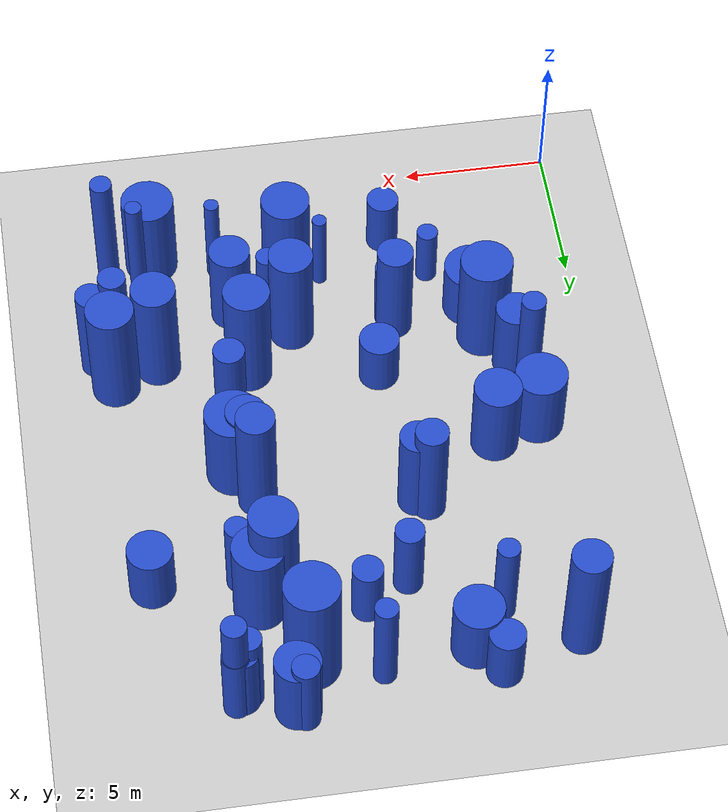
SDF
<sdf version="1.6">
 <world name="default">
  <model name="ground_plane">
   <static>1</static>
   <link name="link">
    <collision name="collision">
     <geometry><plane><normal>0 0 1</normal><size>100 100</size></plane></geometry>
     <surface><friction><ode><mu>100</mu><mu2>50</mu2></ode></friction></surface>
    </collision>
    <visual name="visual">
     <cast_shadows>0</cast_shadows>
     <geometry><plane><normal>0 0 1</normal><size>100 100</size></plane></geometry>
     <material>
      <script><uri>file://media/materials/scripts/gazebo.material</uri><name>Gazebo/Grey</name></script>
     </material>
    </visual>
   </link>
  </model>
  <model name="2">
   <static>0</static>
   <link name="link">
    <inertial>
     <mass>2</mass>
     <inertia><ixx>2.4592</ixx><ixy>0</ixy><ixz>0</ixz><iyy>2.4592</iyy><iyz>0</iyz><izz>0.847323</izz></inertia>
    </inertial>
    <collision name="collision">
     <geometry><cylinder><length>3.49474</length><radius>0.920501</radius></cylinder></geometry>
     <surface><contact><collide_without_contact>1</collide_without_contact></contact></surface>
    </collision>
    <visual name="visual">
     <geometry><cylinder><length>3.49474</length><radius>0.920501</radius></cylinder></geometry>
     <material>
      <script><uri>file://media/materials/scripts/gazebo.material</uri><name>Gazebo/Blue</name></script>
     </material>
    </visual>
    <gravity>0</gravity>
   </link>
   <pose>14.6339 2.72103 1.74737 0 -0 0</pose>
  </model>
  <model name="3">
   <static>0</static>
   <link name="link">
    <inertial>
     <mass>2</mass>
     <inertia><ixx>4.1115</ixx><ixy>0</ixy><ixz>0</ixz><iyy>4.1115</iyy><iyz>0</iyz><izz>0.173022</izz></inertia>
    </inertial>
    <collision name="collision">
     <geometry><cylinder><length>4.91426</length><radius>0.415959</radius></cylinder></geometry>
     <surface><contact><collide_without_contact>1</collide_without_contact></contact></surface>
    </collision>
    <visual name="visual">
     <geometry><cylinder><length>4.91426</length><radius>0.415959</radius></cylinder></geometry>
     <material>
      <script><uri>file://media/materials/scripts/gazebo.material</uri><name>Gazebo/Blue</name></script>
     </material>
    </visual>
    <gravity>0</gravity>
   </link>
   <pose>13.7823 21.1588 2.45713 0 -0 0</pose>
  </model>
  <model name="4">
   <static>0</static>
   <link name="link">
    <inertial>
     <mass>2</mass>
     <inertia><ixx>1.69462</ixx><ixy>0</ixy><ixz>0</ixz><iyy>1.69462</iyy><iyz>0</iyz><izz>0.206012</izz></inertia>
    </inertial>
    <collision name="collision">
     <geometry><cylinder><length>3.09026</length><radius>0.453885</radius></cylinder></geometry>
     <surface><contact><collide_without_contact>1</collide_without_contact></contact></surface>
    </collision>
    <visual name="visual">
     <geometry><cylinder><length>3.09026</length><radius>0.453885</radius></cylinder></geometry>
     <material>
      <script><uri>file://media/materials/scripts/gazebo.material</uri><name>Gazebo/Blue</name></script>
     </material>
    </visual>
    <gravity>0</gravity>
   </link>
   <pose>13.7872 21.1345 1.54513 0 -0 0</pose>
  </model>
  <model name="11">
   <static>0</static>
   <link name="link">
    <inertial>
     <mass>2</mass>
     <inertia><ixx>3.77059</ixx><ixy>0</ixy><ixz>0</ixz><iyy>3.77059</iyy><iyz>0</iyz><izz>0.647013</izz></inertia>
    </inertial>
    <collision name="collision">
     <geometry><cylinder><length>4.5478</length><radius>0.804371</radius></cylinder></geometry>
     <surface><contact><collide_without_contact>1</collide_without_contact></contact></surface>
    </collision>
    <visual name="visual">
     <geometry><cylinder><length>4.5478</length><radius>0.804371</radius></cylinder></geometry>
     <material>
      <script><uri>file://media/materials/scripts/gazebo.material</uri><name>Gazebo/Blue</name></script>
     </material>
    </visual>
    <gravity>0</gravity>
   </link>
   <pose>11.7835 8.00404 2.2739 0 -0 0</pose>
  </model>
  <model name="19">
   <static>0</static>
   <link name="link">
    <inertial>
     <mass>2</mass>
     <inertia>
      <ixx>0.997922</ixx>
      <ixy>0</ixy>
      <ixz>0</ixz>
      <iyy>0.997922</iyy>
      <iyz>0</iyz>
      <izz>0.310025</izz>
     </inertia>
    </inertial>
    <collision name="collision">
     <geometry><cylinder><length>2.24888</length><radius>0.556799</radius></cylinder></geometry>
     <surface><contact><collide_without_contact>1</collide_without_contact></contact></surface>
    </collision>
    <visual name="visual">
     <geometry><cylinder><length>2.24888</length><radius>0.556799</radius></cylinder></geometry>
     <material>
      <script><uri>file://media/materials/scripts/gazebo.material</uri><name>Gazebo/Blue</name></script>
     </material>
    </visual>
    <gravity>0</gravity>
   </link>
   <pose>6.32254 2.75765 1.12444 0 -0 0</pose>
  </model>
  <model name="21">
   <static>0</static>
   <link name="link">
    <inertial>
     <mass>2</mass>
     <inertia>
      <ixx>1.75689</ixx>
      <ixy>0</ixy>
      <ixz>0</ixz>
      <iyy>1.75689</iyy>
      <iyz>0</iyz>
      <izz>0.0651823</izz>
     </inertia>
    </inertial>
    <collision name="collision">
     <geometry><cylinder><length>3.21648</length><radius>0.255308</radius></cylinder></geometry>
     <surface><contact><collide_without_contact>1</collide_without_contact></contact></surface>
    </collision>
    <visual name="visual">
     <geometry><cylinder><length>3.21648</length><radius>0.255308</radius></cylinder></geometry>
     <material>
      <script><uri>file://media/materials/scripts/gazebo.material</uri><name>Gazebo/Blue</name></script>
     </material>
    </visual>
    <gravity>0</gravity>
   </link>
   <pose>8.77724 4.1816 1.60824 0 -0 0</pose>
  </model>
  <model name="22">
   <static>0</static>
   <link name="link">
    <inertial>
     <mass>2</mass>
     <inertia><ixx>2.50621</ixx><ixy>0</ixy><ixz>0</ixz><iyy>2.50621</iyy><iyz>0</iyz><izz>0.412755</izz></inertia>
    </inertial>
    <collision name="collision">
     <geometry><cylinder><length>3.7147</length><radius>0.64246</radius></cylinder></geometry>
     <surface><contact><collide_without_contact>1</collide_without_contact></contact></surface>
    </collision>
    <visual name="visual">
     <geometry><cylinder><length>3.7147</length><radius>0.64246</radius></cylinder></geometry>
     <material>
      <script><uri>file://media/materials/scripts/gazebo.material</uri><name>Gazebo/Blue</name></script>
     </material>
    </visual>
    <gravity>0</gravity>
   </link>
   <pose>6.86482 14.0884 1.85735 0 -0 0</pose>
  </model>
  <model name="27">
   <static>0</static>
   <link name="link">
    <inertial>
     <mass>2</mass>
     <inertia><ixx>1.09126</ixx><ixy>0</ixy><ixz>0</ixz><iyy>1.09126</iyy><iyz>0</iyz><izz>0.36449</izz></inertia>
    </inertial>
    <collision name="collision">
     <geometry><cylinder><length>2.3354</length><radius>0.60373</radius></cylinder></geometry>
     <surface><contact><collide_without_contact>1</collide_without_contact></contact></surface>
    </collision>
    <visual name="visual">
     <geometry><cylinder><length>2.3354</length><radius>0.60373</radius></cylinder></geometry>
     <material>
      <script><uri>file://media/materials/scripts/gazebo.material</uri><name>Gazebo/Blue</name></script>
     </material>
    </visual>
    <gravity>0</gravity>
   </link>
   <pose>5.09837 21.0818 1.1677 0 -0 0</pose>
  </model>
  <model name="32">
   <static>0</static>
   <link name="link">
    <inertial>
     <mass>2</mass>
     <inertia><ixx>2.55489</ixx><ixy>0</ixy><ixz>0</ixz><iyy>2.55489</iyy><iyz>0</iyz><izz>0.788576</izz></inertia>
    </inertial>
    <collision name="collision">
     <geometry><cylinder><length>3.6005</length><radius>0.888018</radius></cylinder></geometry>
     <surface><contact><collide_without_contact>1</collide_without_contact></contact></surface>
    </collision>
    <visual name="visual">
     <geometry><cylinder><length>3.6005</length><radius>0.888018</radius></cylinder></geometry>
     <material>
      <script><uri>file://media/materials/scripts/gazebo.material</uri><name>Gazebo/Blue</name></script>
     </material>
    </visual>
    <gravity>0</gravity>
   </link>
   <pose>12.5968 17.555 1.80025 0 -0 0</pose>
  </model>
  <model name="38">
   <static>0</static>
   <link name="link">
    <inertial>
     <mass>2</mass>
     <inertia><ixx>1.8464</ixx><ixy>0</ixy><ixz>0</ixz><iyy>1.8464</iyy><iyz>0</iyz><izz>0.210959</izz></inertia>
    </inertial>
    <collision name="collision">
     <geometry><cylinder><length>3.23195</length><radius>0.459303</radius></cylinder></geometry>
     <surface><contact><collide_without_contact>1</collide_without_contact></contact></surface>
    </collision>
    <visual name="visual">
     <geometry><cylinder><length>3.23195</length><radius>0.459303</radius></cylinder></geometry>
     <material>
      <script><uri>file://media/materials/scripts/gazebo.material</uri><name>Gazebo/Blue</name></script>
     </material>
    </visual>
    <gravity>0</gravity>
   </link>
   <pose>11.6565 21.8837 1.61598 0 -0 0</pose>
  </model>
  <model name="40">
   <static>0</static>
   <link name="link">
    <inertial>
     <mass>2</mass>
     <inertia><ixx>1.69462</ixx><ixy>0</ixy><ixz>0</ixz><iyy>1.69462</iyy><iyz>0</iyz><izz>0.809361</izz></inertia>
    </inertial>
    <collision name="collision">
     <geometry><cylinder><length>2.78202</length><radius>0.899645</radius></cylinder></geometry>
     <surface><contact><collide_without_contact>1</collide_without_contact></contact></surface>
    </collision>
    <visual name="visual">
     <geometry><cylinder><length>2.78202</length><radius>0.899645</radius></cylinder></geometry>
     <material>
      <script><uri>file://media/materials/scripts/gazebo.material</uri><name>Gazebo/Blue</name></script>
     </material>
    </visual>
    <gravity>0</gravity>
   </link>
   <pose>2.25113 11.4808 1.39101 0 -0 0</pose>
  </model>
  <model name="45">
   <static>0</static>
   <link name="link">
    <inertial>
     <mass>2</mass>
     <inertia><ixx>3.37145</ixx><ixy>0</ixy><ixz>0</ixz><iyy>3.37145</iyy><iyz>0</iyz><izz>0.593405</izz></inertia>
    </inertial>
    <collision name="collision">
     <geometry><cylinder><length>4.29517</length><radius>0.770328</radius></cylinder></geometry>
     <surface><contact><collide_without_contact>1</collide_without_contact></contact></surface>
    </collision>
    <visual name="visual">
     <geometry><cylinder><length>4.29517</length><radius>0.770328</radius></cylinder></geometry>
     <material>
      <script><uri>file://media/materials/scripts/gazebo.material</uri><name>Gazebo/Blue</name></script>
     </material>
    </visual>
    <gravity>0</gravity>
   </link>
   <pose>10.0825 6.46261 2.14758 0 -0 0</pose>
  </model>
  <model name="47">
   <static>0</static>
   <link name="link">
    <inertial>
     <mass>2</mass>
     <inertia><ixx>4.30581</ixx><ixy>0</ixy><ixz>0</ixz><iyy>4.30581</iyy><iyz>0</iyz><izz>0.874701</izz></inertia>
    </inertial>
    <collision name="collision">
     <geometry><cylinder><length>4.81775</length><radius>0.935255</radius></cylinder></geometry>
     <surface><contact><collide_without_contact>1</collide_without_contact></contact></surface>
    </collision>
    <visual name="visual">
     <geometry><cylinder><length>4.81775</length><radius>0.935255</radius></cylinder></geometry>
     <material>
      <script><uri>file://media/materials/scripts/gazebo.material</uri><name>Gazebo/Blue</name></script>
     </material>
    </visual>
    <gravity>0</gravity>
   </link>
   <pose>11.1965 19.9775 2.40888 0 -0 0</pose>
  </model>
  <model name="52">
   <static>0</static>
   <link name="link">
    <inertial>
     <mass>2</mass>
     <inertia><ixx>2.41043</ixx><ixy>0</ixy><ixz>0</ixz><iyy>2.41043</iyy><iyz>0</iyz><izz>0.952559</izz></inertia>
    </inertial>
    <collision name="collision">
     <geometry><cylinder><length>3.40659</length><radius>0.975991</radius></cylinder></geometry>
     <surface><contact><collide_without_contact>1</collide_without_contact></contact></surface>
    </collision>
    <visual name="visual">
     <geometry><cylinder><length>3.40659</length><radius>0.975991</radius></cylinder></geometry>
     <material>
      <script><uri>file://media/materials/scripts/gazebo.material</uri><name>Gazebo/Blue</name></script>
     </material>
    </visual>
    <gravity>0</gravity>
   </link>
   <pose>12.7603 12.0977 1.7033 0 -0 0</pose>
  </model>
  <model name="58">
   <static>0</static>
   <link name="link">
    <inertial>
     <mass>2</mass>
     <inertia><ixx>2.373</ixx><ixy>0</ixy><ixz>0</ixz><iyy>2.373</iyy><iyz>0</iyz><izz>0.145123</izz></inertia>
    </inertial>
    <collision name="collision">
     <geometry><cylinder><length>3.71519</length><radius>0.38095</radius></cylinder></geometry>
     <surface><contact><collide_without_contact>1</collide_without_contact></contact></surface>
    </collision>
    <visual name="visual">
     <geometry><cylinder><length>3.71519</length><radius>0.38095</radius></cylinder></geometry>
     <material>
      <script><uri>file://media/materials/scripts/gazebo.material</uri><name>Gazebo/Blue</name></script>
     </material>
    </visual>
    <gravity>0</gravity>
   </link>
   <pose>4.71278 18.757 1.8576 0 -0 0</pose>
  </model>
  <model name="60">
   <static>0</static>
   <link name="link">
    <inertial>
     <mass>2</mass>
     <inertia><ixx>1.97195</ixx><ixy>0</ixy><ixz>0</ixz><iyy>1.97195</iyy><iyz>0</iyz><izz>0.666713</izz></inertia>
    </inertial>
    <collision name="collision">
     <geometry><cylinder><length>3.13553</length><radius>0.816525</radius></cylinder></geometry>
     <surface><contact><collide_without_contact>1</collide_without_contact></contact></surface>
    </collision>
    <visual name="visual">
     <geometry><cylinder><length>3.13553</length><radius>0.816525</radius></cylinder></geometry>
     <material>
      <script><uri>file://media/materials/scripts/gazebo.material</uri><name>Gazebo/Blue</name></script>
     </material>
    </visual>
    <gravity>0</gravity>
   </link>
   <pose>3.85237 12.0827 1.56776 0 -0 0</pose>
  </model>
  <model name="71">
   <static>0</static>
   <link name="link">
    <inertial>
     <mass>2</mass>
     <inertia><ixx>1.35655</ixx><ixy>0</ixy><ixz>0</ixz><iyy>1.35655</iyy><iyz>0</iyz><izz>0.3536</izz></inertia>
    </inertial>
    <collision name="collision">
     <geometry><cylinder><length>2.66054</length><radius>0.594643</radius></cylinder></geometry>
     <surface><contact><collide_without_contact>1</collide_without_contact></contact></surface>
    </collision>
    <visual name="visual">
     <geometry><cylinder><length>2.66054</length><radius>0.594643</radius></cylinder></geometry>
     <material>
      <script><uri>file://media/materials/scripts/gazebo.material</uri><name>Gazebo/Blue</name></script>
     </material>
    </visual>
    <gravity>0</gravity>
   </link>
   <pose>6.51923 6.20878 1.33027 0 -0 0</pose>
  </model>
  <model name="77">
   <static>0</static>
   <link name="link">
    <inertial>
     <mass>2</mass>
     <inertia><ixx>2.29026</ixx><ixy>0</ixy><ixz>0</ixz><iyy>2.29026</iyy><iyz>0</iyz><izz>0.492455</izz></inertia>
    </inertial>
    <collision name="collision">
     <geometry><cylinder><length>3.50202</length><radius>0.701751</radius></cylinder></geometry>
     <surface><contact><collide_without_contact>1</collide_without_contact></contact></surface>
    </collision>
    <visual name="visual">
     <geometry><cylinder><length>3.50202</length><radius>0.701751</radius></cylinder></geometry>
     <material>
      <script><uri>file://media/materials/scripts/gazebo.material</uri><name>Gazebo/Blue</name></script>
     </material>
    </visual>
    <gravity>0</gravity>
   </link>
   <pose>12.3354 12.1472 1.75101 0 -0 0</pose>
  </model>
  <model name="88">
   <static>0</static>
   <link name="link">
    <inertial>
     <mass>2</mass>
     <inertia><ixx>3.32332</ixx><ixy>0</ixy><ixz>0</ixz><iyy>3.32332</iyy><iyz>0</iyz><izz>0.81294</izz></inertia>
    </inertial>
    <collision name="collision">
     <geometry><cylinder><length>4.18343</length><radius>0.901632</radius></cylinder></geometry>
     <surface><contact><collide_without_contact>1</collide_without_contact></contact></surface>
    </collision>
    <visual name="visual">
     <geometry><cylinder><length>4.18343</length><radius>0.901632</radius></cylinder></geometry>
     <material>
      <script><uri>file://media/materials/scripts/gazebo.material</uri><name>Gazebo/Blue</name></script>
     </material>
    </visual>
    <gravity>0</gravity>
   </link>
   <pose>3.4913 7.55284 2.09172 0 -0 0</pose>
  </model>
  <model name="90">
   <static>0</static>
   <link name="link">
    <inertial>
     <mass>2</mass>
     <inertia><ixx>2.86278</ixx><ixy>0</ixy><ixz>0</ixz><iyy>2.86278</iyy><iyz>0</iyz><izz>0.397125</izz></inertia>
    </inertial>
    <collision name="collision">
     <geometry><cylinder><length>3.99816</length><radius>0.630179</radius></cylinder></geometry>
     <surface><contact><collide_without_contact>1</collide_without_contact></contact></surface>
    </collision>
    <visual name="visual">
     <geometry><cylinder><length>3.99816</length><radius>0.630179</radius></cylinder></geometry>
     <material>
      <script><uri>file://media/materials/scripts/gazebo.material</uri><name>Gazebo/Blue</name></script>
     </material>
    </visual>
    <gravity>0</gravity>
   </link>
   <pose>6.48747 6.60006 1.99908 0 -0 0</pose>
  </model>
  <model name="92">
   <static>0</static>
   <link name="link">
    <inertial>
     <mass>2</mass>
     <inertia><ixx>1.26504</ixx><ixy>0</ixy><ixz>0</ixz><iyy>1.26504</iyy><iyz>0</iyz><izz>0.921977</izz></inertia>
    </inertial>
    <collision name="collision">
     <geometry><cylinder><length>2.19643</length><radius>0.960197</radius></cylinder></geometry>
     <surface><contact><collide_without_contact>1</collide_without_contact></contact></surface>
    </collision>
    <visual name="visual">
     <geometry><cylinder><length>2.19643</length><radius>0.960197</radius></cylinder></geometry>
     <material>
      <script><uri>file://media/materials/scripts/gazebo.material</uri><name>Gazebo/Blue</name></script>
     </material>
    </visual>
    <gravity>0</gravity>
   </link>
   <pose>3.6952 6.14217 1.09822 0 -0 0</pose>
  </model>
  <model name="95">
   <static>0</static>
   <link name="link">
    <inertial>
     <mass>2</mass>
     <inertia><ixx>2.20856</ixx><ixy>0</ixy><ixz>0</ixz><iyy>2.20856</iyy><iyz>0</iyz><izz>0.202569</izz></inertia>
    </inertial>
    <collision name="collision">
     <geometry><cylinder><length>3.55579</length><radius>0.450077</radius></cylinder></geometry>
     <surface><contact><collide_without_contact>1</collide_without_contact></contact></surface>
    </collision>
    <visual name="visual">
     <geometry><cylinder><length>3.55579</length><radius>0.450077</radius></cylinder></geometry>
     <material>
      <script><uri>file://media/materials/scripts/gazebo.material</uri><name>Gazebo/Blue</name></script>
     </material>
    </visual>
    <gravity>0</gravity>
   </link>
   <pose>13.3348 20.8304 1.77789 0 -0 0</pose>
  </model>
  <model name="97">
   <static>0</static>
   <link name="link">
    <inertial>
     <mass>2</mass>
     <inertia><ixx>1.79072</ixx><ixy>0</ixy><ixz>0</ixz><iyy>1.79072</iyy><iyz>0</iyz><izz>0.492461</izz></inertia>
    </inertial>
    <collision name="collision">
     <geometry><cylinder><length>3.04417</length><radius>0.701755</radius></cylinder></geometry>
     <surface><contact><collide_without_contact>1</collide_without_contact></contact></surface>
    </collision>
    <visual name="visual">
     <geometry><cylinder><length>3.04417</length><radius>0.701755</radius></cylinder></geometry>
     <material>
      <script><uri>file://media/materials/scripts/gazebo.material</uri><name>Gazebo/Blue</name></script>
     </material>
    </visual>
    <gravity>0</gravity>
   </link>
   <pose>2.64905 8.82661 1.52208 0 -0 0</pose>
  </model>
  <model name="100">
   <static>0</static>
   <link name="link">
    <inertial>
     <mass>2</mass>
     <inertia><ixx>3.68584</ixx><ixy>0</ixy><ixz>0</ixz><iyy>3.68584</iyy><iyz>0</iyz><izz>0.715323</izz></inertia>
    </inertial>
    <collision name="collision">
     <geometry><cylinder><length>4.46868</length><radius>0.845768</radius></cylinder></geometry>
     <surface><contact><collide_without_contact>1</collide_without_contact></contact></surface>
    </collision>
    <visual name="visual">
     <geometry><cylinder><length>4.46868</length><radius>0.845768</radius></cylinder></geometry>
     <material>
      <script><uri>file://media/materials/scripts/gazebo.material</uri><name>Gazebo/Blue</name></script>
     </material>
    </visual>
    <gravity>0</gravity>
   </link>
   <pose>9.95991 4.16997 2.23434 0 -0 0</pose>
  </model>
  <model name="102">
   <static>0</static>
   <link name="link">
    <inertial>
     <mass>2</mass>
     <inertia><ixx>3.54806</ixx><ixy>0</ixy><ixz>0</ixz><iyy>3.54806</iyy><iyz>0</iyz><izz>0.691929</izz></inertia>
    </inertial>
    <collision name="collision">
     <geometry><cylinder><length>4.38322</length><radius>0.831823</radius></cylinder></geometry>
     <surface><contact><collide_without_contact>1</collide_without_contact></contact></surface>
    </collision>
    <visual name="visual">
     <geometry><cylinder><length>4.38322</length><radius>0.831823</radius></cylinder></geometry>
     <material>
      <script><uri>file://media/materials/scripts/gazebo.material</uri><name>Gazebo/Blue</name></script>
     </material>
    </visual>
    <gravity>0</gravity>
   </link>
   <pose>16.3981 7.99857 2.19161 0 -0 0</pose>
  </model>
  <model name="107">
   <static>0</static>
   <link name="link">
    <inertial>
     <mass>2</mass>
     <inertia><ixx>1.85939</ixx><ixy>0</ixy><ixz>0</ixz><iyy>1.85939</iyy><iyz>0</iyz><izz>0.178695</izz></inertia>
    </inertial>
    <collision name="collision">
     <geometry><cylinder><length>3.25887</length><radius>0.422723</radius></cylinder></geometry>
     <surface><contact><collide_without_contact>1</collide_without_contact></contact></surface>
    </collision>
    <visual name="visual">
     <geometry><cylinder><length>3.25887</length><radius>0.422723</radius></cylinder></geometry>
     <material>
      <script><uri>file://media/materials/scripts/gazebo.material</uri><name>Gazebo/Blue</name></script>
     </material>
    </visual>
    <gravity>0</gravity>
   </link>
   <pose>13.1558 16.4623 1.62944 0 -0 0</pose>
  </model>
  <model name="111">
   <static>0</static>
   <link name="link">
    <inertial>
     <mass>2</mass>
     <inertia>
      <ixx>0.780098</ixx>
      <ixy>0</ixy>
      <ixz>0</ixz>
      <iyy>0.780098</iyy>
      <iyz>0</iyz>
      <izz>0.171352</izz>
     </inertia>
    </inertial>
    <collision name="collision">
     <geometry><cylinder><length>2.04121</length><radius>0.413947</radius></cylinder></geometry>
     <surface><contact><collide_without_contact>1</collide_without_contact></contact></surface>
    </collision>
    <visual name="visual">
     <geometry><cylinder><length>2.04121</length><radius>0.413947</radius></cylinder></geometry>
     <material>
      <script><uri>file://media/materials/scripts/gazebo.material</uri><name>Gazebo/Blue</name></script>
     </material>
    </visual>
    <gravity>0</gravity>
   </link>
   <pose>5.84415 20.2492 1.0206 0 -0 0</pose>
  </model>
  <model name="118">
   <static>0</static>
   <link name="link">
    <inertial>
     <mass>2</mass>
     <inertia><ixx>1.11708</ixx><ixy>0</ixy><ixz>0</ixz><iyy>1.11708</iyy><iyz>0</iyz><izz>0.275413</izz></inertia>
    </inertial>
    <collision name="collision">
     <geometry><cylinder><length>2.42409</length><radius>0.524798</radius></cylinder></geometry>
     <surface><contact><collide_without_contact>1</collide_without_contact></contact></surface>
    </collision>
    <visual name="visual">
     <geometry><cylinder><length>2.42409</length><radius>0.524798</radius></cylinder></geometry>
     <material>
      <script><uri>file://media/materials/scripts/gazebo.material</uri><name>Gazebo/Blue</name></script>
     </material>
    </visual>
    <gravity>0</gravity>
   </link>
   <pose>9.1346 18.0868 1.21205 0 -0 0</pose>
  </model>
  <model name="121">
   <static>0</static>
   <link name="link">
    <inertial>
     <mass>2</mass>
     <inertia><ixx>2.77038</ixx><ixy>0</ixy><ixz>0</ixz><iyy>2.77038</iyy><iyz>0</iyz><izz>0.151986</izz></inertia>
    </inertial>
    <collision name="collision">
     <geometry><cylinder><length>4.02074</length><radius>0.389854</radius></cylinder></geometry>
     <surface><contact><collide_without_contact>1</collide_without_contact></contact></surface>
    </collision>
    <visual name="visual">
     <geometry><cylinder><length>4.02074</length><radius>0.389854</radius></cylinder></geometry>
     <material>
      <script><uri>file://media/materials/scripts/gazebo.material</uri><name>Gazebo/Blue</name></script>
     </material>
    </visual>
    <gravity>0</gravity>
   </link>
   <pose>8.93188 20.6188 2.01037 0 -0 0</pose>
  </model>
  <model name="134">
   <static>0</static>
   <link name="link">
    <inertial>
     <mass>2</mass>
     <inertia><ixx>1.3834</ixx><ixy>0</ixy><ixz>0</ixz><iyy>1.3834</iyy><iyz>0</iyz><izz>0.719026</izz></inertia>
    </inertial>
    <collision name="collision">
     <geometry><cylinder><length>2.47858</length><radius>0.847954</radius></cylinder></geometry>
     <surface><contact><collide_without_contact>1</collide_without_contact></contact></surface>
    </collision>
    <visual name="visual">
     <geometry><cylinder><length>2.47858</length><radius>0.847954</radius></cylinder></geometry>
     <material>
      <script><uri>file://media/materials/scripts/gazebo.material</uri><name>Gazebo/Blue</name></script>
     </material>
    </visual>
    <gravity>0</gravity>
   </link>
   <pose>5.83667 20.0283 1.23929 0 -0 0</pose>
  </model>
  <model name="143">
   <static>0</static>
   <link name="link">
    <inertial>
     <mass>2</mass>
     <inertia><ixx>3.31479</ixx><ixy>0</ixy><ixz>0</ixz><iyy>3.31479</iyy><iyz>0</iyz><izz>0.28799</izz></inertia>
    </inertial>
    <collision name="collision">
     <geometry><cylinder><length>4.36174</length><radius>0.536647</radius></cylinder></geometry>
     <surface><contact><collide_without_contact>1</collide_without_contact></contact></surface>
    </collision>
    <visual name="visual">
     <geometry><cylinder><length>4.36174</length><radius>0.536647</radius></cylinder></geometry>
     <material>
      <script><uri>file://media/materials/scripts/gazebo.material</uri><name>Gazebo/Blue</name></script>
     </material>
    </visual>
    <gravity>0</gravity>
   </link>
   <pose>12.638 10.2211 2.18087 0 -0 0</pose>
  </model>
  <model name="151">
   <static>0</static>
   <link name="link">
    <inertial>
     <mass>2</mass>
     <inertia>
      <ixx>0.940168</ixx>
      <ixy>0</ixy>
      <ixz>0</ixz>
      <iyy>0.940168</iyy>
      <iyz>0</iyz>
      <izz>0.483154</izz>
     </inertia>
    </inertial>
    <collision name="collision">
     <geometry><cylinder><length>2.04733</length><radius>0.695093</radius></cylinder></geometry>
     <surface><contact><collide_without_contact>1</collide_without_contact></contact></surface>
    </collision>
    <visual name="visual">
     <geometry><cylinder><length>2.04733</length><radius>0.695093</radius></cylinder></geometry>
     <material>
      <script><uri>file://media/materials/scripts/gazebo.material</uri><name>Gazebo/Blue</name></script>
     </material>
    </visual>
    <gravity>0</gravity>
   </link>
   <pose>7.32886 8.69612 1.02366 0 -0 0</pose>
  </model>
  <model name="154">
   <static>0</static>
   <link name="link">
    <inertial>
     <mass>2</mass>
     <inertia><ixx>4.18222</ixx><ixy>0</ixy><ixz>0</ixz><iyy>4.18222</iyy><iyz>0</iyz><izz>0.43784</izz></inertia>
    </inertial>
    <collision name="collision">
     <geometry><cylinder><length>4.87646</length><radius>0.661695</radius></cylinder></geometry>
     <surface><contact><collide_without_contact>1</collide_without_contact></contact></surface>
    </collision>
    <visual name="visual">
     <geometry><cylinder><length>4.87646</length><radius>0.661695</radius></cylinder></geometry>
     <material>
      <script><uri>file://media/materials/scripts/gazebo.material</uri><name>Gazebo/Blue</name></script>
     </material>
    </visual>
    <gravity>0</gravity>
   </link>
   <pose>2.38609 20.1587 2.43823 0 -0 0</pose>
  </model>
  <model name="159">
   <static>0</static>
   <link name="link">
    <inertial>
     <mass>2</mass>
     <inertia><ixx>3.53942</ixx><ixy>0</ixy><ixz>0</ixz><iyy>3.53942</iyy><iyz>0</iyz><izz>0.596226</izz></inertia>
    </inertial>
    <collision name="collision">
     <geometry><cylinder><length>4.40997</length><radius>0.772157</radius></cylinder></geometry>
     <surface><contact><collide_without_contact>1</collide_without_contact></contact></surface>
    </collision>
    <visual name="visual">
     <geometry><cylinder><length>4.40997</length><radius>0.772157</radius></cylinder></geometry>
     <material>
      <script><uri>file://media/materials/scripts/gazebo.material</uri><name>Gazebo/Blue</name></script>
     </material>
    </visual>
    <gravity>0</gravity>
   </link>
   <pose>14.8704 7.34621 2.20499 0 -0 0</pose>
  </model>
  <model name="161">
   <static>0</static>
   <link name="link">
    <inertial>
     <mass>2</mass>
     <inertia>
      <ixx>0.964244</ixx>
      <ixy>0</ixy>
      <ixz>0</ixz>
      <iyy>0.964244</iyy>
      <iyz>0</iyz>
      <izz>0.135231</izz>
     </inertia>
    </inertial>
    <collision name="collision">
     <geometry><cylinder><length>2.31943</length><radius>0.367737</radius></cylinder></geometry>
     <surface><contact><collide_without_contact>1</collide_without_contact></contact></surface>
    </collision>
    <visual name="visual">
     <geometry><cylinder><length>2.31943</length><radius>0.367737</radius></cylinder></geometry>
     <material>
      <script><uri>file://media/materials/scripts/gazebo.material</uri><name>Gazebo/Blue</name></script>
     </material>
    </visual>
    <gravity>0</gravity>
   </link>
   <pose>5.00364 4.50297 1.15972 0 -0 0</pose>
  </model>
  <model name="178">
   <static>0</static>
   <link name="link">
    <inertial>
     <mass>2</mass>
     <inertia><ixx>2.19598</ixx><ixy>0</ixy><ixz>0</ixz><iyy>2.19598</iyy><iyz>0</iyz><izz>0.145822</izz></inertia>
    </inertial>
    <collision name="collision">
     <geometry><cylinder><length>3.56909</length><radius>0.381867</radius></cylinder></geometry>
     <surface><contact><collide_without_contact>1</collide_without_contact></contact></surface>
    </collision>
    <visual name="visual">
     <geometry><cylinder><length>3.56909</length><radius>0.381867</radius></cylinder></geometry>
     <material>
      <script><uri>file://media/materials/scripts/gazebo.material</uri><name>Gazebo/Blue</name></script>
     </material>
    </visual>
    <gravity>0</gravity>
   </link>
   <pose>10.8212 5.80215 1.78454 0 -0 0</pose>
  </model>
  <model name="183">
   <static>0</static>
   <link name="link">
    <inertial>
     <mass>2</mass>
     <inertia><ixx>1.59692</ixx><ixy>0</ixy><ixz>0</ixz><iyy>1.59692</iyy><iyz>0</iyz><izz>0.360686</izz></inertia>
    </inertial>
    <collision name="collision">
     <geometry><cylinder><length>2.91538</length><radius>0.600571</radius></cylinder></geometry>
     <surface><contact><collide_without_contact>1</collide_without_contact></contact></surface>
    </collision>
    <visual name="visual">
     <geometry><cylinder><length>2.91538</length><radius>0.600571</radius></cylinder></geometry>
     <material>
      <script><uri>file://media/materials/scripts/gazebo.material</uri><name>Gazebo/Blue</name></script>
     </material>
    </visual>
    <gravity>0</gravity>
   </link>
   <pose>13.5905 20.9137 1.45769 0 -0 0</pose>
  </model>
  <model name="184">
   <static>0</static>
   <link name="link">
    <inertial>
     <mass>2</mass>
     <inertia><ixx>3.81968</ixx><ixy>0</ixy><ixz>0</ixz><iyy>3.81968</iyy><iyz>0</iyz><izz>0.146862</izz></inertia>
    </inertial>
    <collision name="collision">
     <geometry><cylinder><length>4.74104</length><radius>0.383226</radius></cylinder></geometry>
     <surface><contact><collide_without_contact>1</collide_without_contact></contact></surface>
    </collision>
    <visual name="visual">
     <geometry><cylinder><length>4.74104</length><radius>0.383226</radius></cylinder></geometry>
     <material>
      <script><uri>file://media/materials/scripts/gazebo.material</uri><name>Gazebo/Blue</name></script>
     </material>
    </visual>
    <gravity>0</gravity>
   </link>
   <pose>16.1818 2.78422 2.37052 0 -0 0</pose>
  </model>
  <model name="185">
   <static>0</static>
   <link name="link">
    <inertial>
     <mass>2</mass>
     <inertia><ixx>3.27841</ixx><ixy>0</ixy><ixz>0</ixz><iyy>3.27841</iyy><iyz>0</iyz><izz>0.230123</izz></inertia>
    </inertial>
    <collision name="collision">
     <geometry><cylinder><length>4.35662</length><radius>0.479711</radius></cylinder></geometry>
     <surface><contact><collide_without_contact>1</collide_without_contact></contact></surface>
    </collision>
    <visual name="visual">
     <geometry><cylinder><length>4.35662</length><radius>0.479711</radius></cylinder></geometry>
     <material>
      <script><uri>file://media/materials/scripts/gazebo.material</uri><name>Gazebo/Blue</name></script>
     </material>
    </visual>
    <gravity>0</gravity>
   </link>
   <pose>16.1941 6.6207 2.17831 0 -0 0</pose>
  </model>
  <model name="190">
   <static>0</static>
   <link name="link">
    <inertial>
     <mass>2</mass>
     <inertia><ixx>3.97541</ixx><ixy>0</ixy><ixz>0</ixz><iyy>3.97541</iyy><iyz>0</iyz><izz>0.441903</izz></inertia>
    </inertial>
    <collision name="collision">
     <geometry><cylinder><length>4.74624</length><radius>0.664758</radius></cylinder></geometry>
     <surface><contact><collide_without_contact>1</collide_without_contact></contact></surface>
    </collision>
    <visual name="visual">
     <geometry><cylinder><length>4.74624</length><radius>0.664758</radius></cylinder></geometry>
     <material>
      <script><uri>file://media/materials/scripts/gazebo.material</uri><name>Gazebo/Blue</name></script>
     </material>
    </visual>
    <gravity>0</gravity>
   </link>
   <pose>12.1448 13.34 2.37312 0 -0 0</pose>
  </model>
  <model name="196">
   <static>0</static>
   <link name="link">
    <inertial>
     <mass>2</mass>
     <inertia><ixx>2.2744</ixx><ixy>0</ixy><ixz>0</ixz><iyy>2.2744</iyy><iyz>0</iyz><izz>0.512084</izz></inertia>
    </inertial>
    <collision name="collision">
     <geometry><cylinder><length>3.47996</length><radius>0.7156</radius></cylinder></geometry>
     <surface><contact><collide_without_contact>1</collide_without_contact></contact></surface>
    </collision>
    <visual name="visual">
     <geometry><cylinder><length>3.47996</length><radius>0.7156</radius></cylinder></geometry>
     <material>
      <script><uri>file://media/materials/scripts/gazebo.material</uri><name>Gazebo/Blue</name></script>
     </material>
    </visual>
    <gravity>0</gravity>
   </link>
   <pose>12.0664 5.3226 1.73998 0 -0 0</pose>
  </model>
  <model name="209">
   <static>0</static>
   <link name="link">
    <inertial>
     <mass>2</mass>
     <inertia><ixx>1.70016</ixx><ixy>0</ixy><ixz>0</ixz><iyy>1.70016</iyy><iyz>0</iyz><izz>0.245876</izz></inertia>
    </inertial>
    <collision name="collision">
     <geometry><cylinder><length>3.07625</length><radius>0.495859</radius></cylinder></geometry>
     <surface><contact><collide_without_contact>1</collide_without_contact></contact></surface>
    </collision>
    <visual name="visual">
     <geometry><cylinder><length>3.07625</length><radius>0.495859</radius></cylinder></geometry>
     <material>
      <script><uri>file://media/materials/scripts/gazebo.material</uri><name>Gazebo/Blue</name></script>
     </material>
    </visual>
    <gravity>0</gravity>
   </link>
   <pose>7.65148 17.2583 1.53812 0 -0 0</pose>
  </model>
  <model name="213">
   <static>0</static>
   <link name="link">
    <inertial>
     <mass>2</mass>
     <inertia><ixx>1.78324</ixx><ixy>0</ixy><ixz>0</ixz><iyy>1.78324</iyy><iyz>0</iyz><izz>0.59989</izz></inertia>
    </inertial>
    <collision name="collision">
     <geometry><cylinder><length>2.98324</length><radius>0.774526</radius></cylinder></geometry>
     <surface><contact><collide_without_contact>1</collide_without_contact></contact></surface>
    </collision>
    <visual name="visual">
     <geometry><cylinder><length>2.98324</length><radius>0.774526</radius></cylinder></geometry>
     <material>
      <script><uri>file://media/materials/scripts/gazebo.material</uri><name>Gazebo/Blue</name></script>
     </material>
    </visual>
    <gravity>0</gravity>
   </link>
   <pose>11.8651 21.5149 1.49162 0 -0 0</pose>
  </model>
  <model name="217">
   <static>0</static>
   <link name="link">
    <inertial>
     <mass>2</mass>
     <inertia><ixx>4.24569</ixx><ixy>0</ixy><ixz>0</ixz><iyy>4.24569</iyy><iyz>0</iyz><izz>0.172333</izz></inertia>
    </inertial>
    <collision name="collision">
     <geometry><cylinder><length>4.99571</length><radius>0.41513</radius></cylinder></geometry>
     <surface><contact><collide_without_contact>1</collide_without_contact></contact></surface>
    </collision>
    <visual name="visual">
     <geometry><cylinder><length>4.99571</length><radius>0.41513</radius></cylinder></geometry>
     <material>
      <script><uri>file://media/materials/scripts/gazebo.material</uri><name>Gazebo/Blue</name></script>
     </material>
    </visual>
    <gravity>0</gravity>
   </link>
   <pose>2.37642 10.0684 2.49786 0 -0 0</pose>
  </model>
  <model name="220">
   <static>0</static>
   <link name="link">
    <inertial>
     <mass>2</mass>
     <inertia><ixx>3.2534</ixx><ixy>0</ixy><ixz>0</ixz><iyy>3.2534</iyy><iyz>0</iyz><izz>0.316523</izz></inertia>
    </inertial>
    <collision name="collision">
     <geometry><cylinder><length>4.30939</length><radius>0.562604</radius></cylinder></geometry>
     <surface><contact><collide_without_contact>1</collide_without_contact></contact></surface>
    </collision>
    <visual name="visual">
     <geometry><cylinder><length>4.30939</length><radius>0.562604</radius></cylinder></geometry>
     <material>
      <script><uri>file://media/materials/scripts/gazebo.material</uri><name>Gazebo/Blue</name></script>
     </material>
    </visual>
    <gravity>0</gravity>
   </link>
   <pose>6.48702 14.384 2.15469 0 -0 0</pose>
  </model>
  <model name="221">
   <static>0</static>
   <link name="link">
    <inertial>
     <mass>2</mass>
     <inertia><ixx>1.21578</ixx><ixy>0</ixy><ixz>0</ixz><iyy>1.21578</iyy><iyz>0</iyz><izz>0.593038</izz></inertia>
    </inertial>
    <collision name="collision">
     <geometry><cylinder><length>2.34852</length><radius>0.77009</radius></cylinder></geometry>
     <surface><contact><collide_without_contact>1</collide_without_contact></contact></surface>
    </collision>
    <visual name="visual">
     <geometry><cylinder><length>2.34852</length><radius>0.77009</radius></cylinder></geometry>
     <material>
      <script><uri>file://media/materials/scripts/gazebo.material</uri><name>Gazebo/Blue</name></script>
     </material>
    </visual>
    <gravity>0</gravity>
   </link>
   <pose>16.0104 16.3521 1.17426 0 -0 0</pose>
  </model>
  <model name="222">
   <static>0</static>
   <link name="link">
    <inertial>
     <mass>2</mass>
     <inertia><ixx>2.69581</ixx><ixy>0</ixy><ixz>0</ixz><iyy>2.69581</iyy><iyz>0</iyz><izz>0.271882</izz></inertia>
    </inertial>
    <collision name="collision">
     <geometry><cylinder><length>3.91908</length><radius>0.521424</radius></cylinder></geometry>
     <surface><contact><collide_without_contact>1</collide_without_contact></contact></surface>
    </collision>
    <visual name="visual">
     <geometry><cylinder><length>3.91908</length><radius>0.521424</radius></cylinder></geometry>
     <material>
      <script><uri>file://media/materials/scripts/gazebo.material</uri><name>Gazebo/Blue</name></script>
     </material>
    </visual>
    <gravity>0</gravity>
   </link>
   <pose>16.9786 6.92828 1.95954 0 -0 0</pose>
  </model>
  <model name="241">
   <static>0</static>
   <link name="link">
    <inertial>
     <mass>2</mass>
     <inertia>
      <ixx>2.23357</ixx>
      <ixy>0</ixy>
      <ixz>0</ixz>
      <iyy>2.23357</iyy>
      <iyz>0</iyz>
      <izz>0.0663426</izz>
     </inertia>
    </inertial>
    <collision name="collision">
     <geometry><cylinder><length>3.63351</length><radius>0.257571</radius></cylinder></geometry>
     <surface><contact><collide_without_contact>1</collide_without_contact></contact></surface>
    </collision>
    <visual name="visual">
     <geometry><cylinder><length>3.63351</length><radius>0.257571</radius></cylinder></geometry>
     <material>
      <script><uri>file://media/materials/scripts/gazebo.material</uri><name>Gazebo/Blue</name></script>
     </material>
    </visual>
    <gravity>0</gravity>
   </link>
   <pose>12.4477 3.31184 1.81675 0 -0 0</pose>
  </model>
  <model name="244">
   <static>0</static>
   <link name="link">
    <inertial>
     <mass>2</mass>
     <inertia>
      <ixx>3.94036</ixx>
      <ixy>0</ixy>
      <ixz>0</ixz>
      <iyy>3.94036</iyy>
      <iyz>0</iyz>
      <izz>0.0854119</izz>
     </inertia>
    </inertial>
    <collision name="collision">
     <geometry><cylinder><length>4.8359</length><radius>0.292253</radius></cylinder></geometry>
     <surface><contact><collide_without_contact>1</collide_without_contact></contact></surface>
    </collision>
    <visual name="visual">
     <geometry><cylinder><length>4.8359</length><radius>0.292253</radius></cylinder></geometry>
     <material>
      <script><uri>file://media/materials/scripts/gazebo.material</uri><name>Gazebo/Blue</name></script>
     </material>
    </visual>
    <gravity>0</gravity>
   </link>
   <pose>15.1859 4.06259 2.41795 0 -0 0</pose>
  </model>
  <model name="246">
   <static>0</static>
   <link name="link">
    <inertial>
     <mass>2</mass>
     <inertia><ixx>4.11689</ixx><ixy>0</ixy><ixz>0</ixz><iyy>4.11689</iyy><iyz>0</iyz><izz>0.667544</izz></inertia>
    </inertial>
    <collision name="collision">
     <geometry><cylinder><length>4.76432</length><radius>0.817033</radius></cylinder></geometry>
     <surface><contact><collide_without_contact>1</collide_without_contact></contact></surface>
    </collision>
    <visual name="visual">
     <geometry><cylinder><length>4.76432</length><radius>0.817033</radius></cylinder></geometry>
     <material>
      <script><uri>file://media/materials/scripts/gazebo.material</uri><name>Gazebo/Blue</name></script>
     </material>
    </visual>
    <gravity>0</gravity>
   </link>
   <pose>12.0593 17.2094 2.38216 0 -0 0</pose>
  </model>
 </world>
</sdf>
